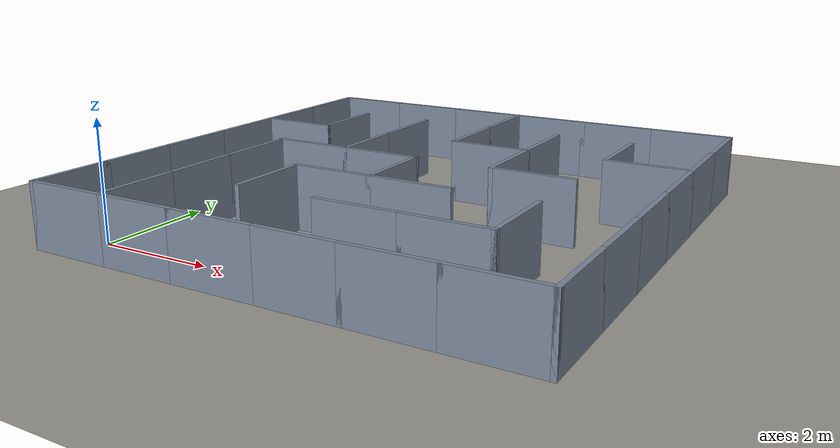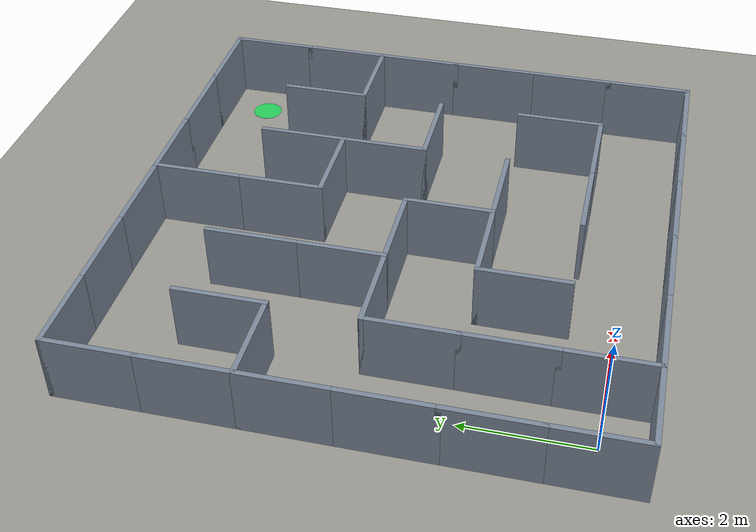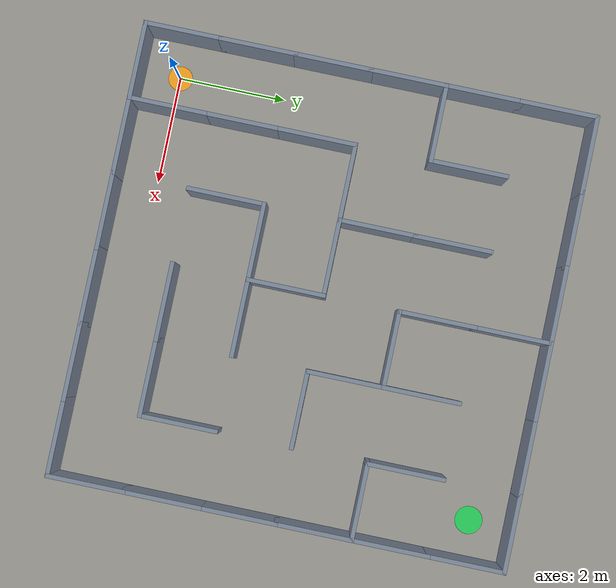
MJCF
<mujoco model="bhl-random-maze-9002">
      <compiler angle="radian"/><option timestep=".0005"/>
      <visual>
        <global offwidth="1280" offheight="720"/>
        <headlight diffuse="0.40 0.40 0.40" ambient="0.30 0.30 0.32" specular="0 0 0"/>
        <quality shadowsize="4096"/>
        <rgba haze="0.16 0.18 0.22 1"/>
      </visual>
      <asset>
        <texture type="skybox" builtin="gradient" rgb1="0.50 0.56 0.64" rgb2="0.10 0.12 0.16" width="512" height="3072"/>
        <texture type="2d" name="tile" builtin="checker" mark="edge" rgb1="0.66 0.65 0.62" rgb2="0.53 0.53 0.51"
                 markrgb="0.40 0.40 0.40" width="300" height="300"/>
        <material name="tile" texture="tile" texuniform="true" texrepeat="6 6" reflectance="0.0" specular="0.05" shininess="0.05"/>
        <texture type="2d" name="brick" builtin="checker" mark="edge" rgb1="0.52 0.57 0.64" rgb2="0.46 0.51 0.58"
                 markrgb="0.36 0.40 0.46" width="128" height="128"/>
        <material name="wall" texture="brick" texuniform="true" texrepeat="3 3" reflectance="0.0" specular="0.1" shininess="0.1"/>
      </asset>
      <worldbody>
      <light pos="3.5 3.5 7" dir="0 0 -1" castshadow="true" diffuse="0.55 0.55 0.55" specular="0.05 0.05 0.05"/>
      <light pos="0.5 6.5 5" dir="0.45 -0.55 -0.7" directional="true" castshadow="false" diffuse="0.30 0.30 0.32"/>
      <geom name="floor" type="plane" size="12 12 .05" material="tile"/>
    <geom name="wall_maze_0" type="box" pos="0.7 0.0 0.55" size="0.04 0.74 0.55" material="wall"/>
<geom name="wall_maze_1" type="box" pos="-0.7 0.0 0.55" size="0.04 0.74 0.55" material="wall"/>
<geom name="wall_maze_2" type="box" pos="0.0 -0.7 0.55" size="0.74 0.04 0.55" material="wall"/>
<geom name="wall_maze_3" type="box" pos="0.7 1.4 0.55" size="0.04 0.74 0.55" material="wall"/>
<geom name="wall_maze_4" type="box" pos="-0.7 1.4 0.55" size="0.04 0.74 0.55" material="wall"/>
<geom name="wall_maze_5" type="box" pos="0.7 2.8 0.55" size="0.04 0.74 0.55" material="wall"/>
<geom name="wall_maze_6" type="box" pos="-0.7 2.8 0.55" size="0.04 0.74 0.55" material="wall"/>
<geom name="wall_maze_7" type="box" pos="0.0 4.9 0.55" size="0.74 0.04 0.55" material="wall"/>
<geom name="wall_maze_8" type="box" pos="-0.7 4.2 0.55" size="0.04 0.74 0.55" material="wall"/>
<geom name="wall_maze_9" type="box" pos="0.7 5.6 0.55" size="0.04 0.74 0.55" material="wall"/>
<geom name="wall_maze_10" type="box" pos="-0.7 5.6 0.55" size="0.04 0.74 0.55" material="wall"/>
<geom name="wall_maze_11" type="box" pos="0.0 7.7 0.55" size="0.74 0.04 0.55" material="wall"/>
<geom name="wall_maze_12" type="box" pos="-0.7 7.0 0.55" size="0.04 0.74 0.55" material="wall"/>
<geom name="wall_maze_13" type="box" pos="1.4 -0.7 0.55" size="0.74 0.04 0.55" material="wall"/>
<geom name="wall_maze_14" type="box" pos="2.1 1.4 0.55" size="0.04 0.74 0.55" material="wall"/>
<geom name="wall_maze_15" type="box" pos="1.4 3.5 0.55" size="0.74 0.04 0.55" material="wall"/>
<geom name="wall_maze_16" type="box" pos="2.1 4.2 0.55" size="0.04 0.74 0.55" material="wall"/>
<geom name="wall_maze_17" type="box" pos="2.1 5.6 0.55" size="0.04 0.74 0.55" material="wall"/>
<geom name="wall_maze_18" type="box" pos="1.4 7.7 0.55" size="0.74 0.04 0.55" material="wall"/>
<geom name="wall_maze_19" type="box" pos="2.8 -0.7 0.55" size="0.74 0.04 0.55" material="wall"/>
<geom name="wall_maze_20" type="box" pos="2.8 2.1 0.55" size="0.74 0.04 0.55" material="wall"/>
<geom name="wall_maze_21" type="box" pos="3.5 2.8 0.55" size="0.04 0.74 0.55" material="wall"/>
<geom name="wall_maze_22" type="box" pos="2.8 3.5 0.55" size="0.74 0.04 0.55" material="wall"/>
<geom name="wall_maze_23" type="box" pos="3.5 5.6 0.55" size="0.04 0.74 0.55" material="wall"/>
<geom name="wall_maze_24" type="box" pos="3.5 7.0 0.55" size="0.04 0.74 0.55" material="wall"/>
<geom name="wall_maze_25" type="box" pos="2.8 7.7 0.55" size="0.74 0.04 0.55" material="wall"/>
<geom name="wall_maze_26" type="box" pos="4.2 0.7 0.55" size="0.74 0.04 0.55" material="wall"/>
<geom name="wall_maze_27" type="box" pos="4.2 -0.7 0.55" size="0.74 0.04 0.55" material="wall"/>
<geom name="wall_maze_28" type="box" pos="4.2 2.1 0.55" size="0.74 0.04 0.55" material="wall"/>
<geom name="wall_maze_29" type="box" pos="4.9 4.2 0.55" size="0.04 0.74 0.55" material="wall"/>
<geom name="wall_maze_30" type="box" pos="4.2 4.9 0.55" size="0.74 0.04 0.55" material="wall"/>
<geom name="wall_maze_31" type="box" pos="4.9 5.6 0.55" size="0.04 0.74 0.55" material="wall"/>
<geom name="wall_maze_32" type="box" pos="4.2 7.7 0.55" size="0.74 0.04 0.55" material="wall"/>
<geom name="wall_maze_33" type="box" pos="5.6 0.7 0.55" size="0.74 0.04 0.55" material="wall"/>
<geom name="wall_maze_34" type="box" pos="5.6 -0.7 0.55" size="0.74 0.04 0.55" material="wall"/>
<geom name="wall_maze_35" type="box" pos="6.3 1.4 0.55" size="0.04 0.74 0.55" material="wall"/>
<geom name="wall_maze_36" type="box" pos="5.6 3.5 0.55" size="0.74 0.04 0.55" material="wall"/>
<geom name="wall_maze_37" type="box" pos="6.3 5.6 0.55" size="0.04 0.74 0.55" material="wall"/>
<geom name="wall_maze_38" type="box" pos="5.6 7.7 0.55" size="0.74 0.04 0.55" material="wall"/>
<geom name="wall_maze_39" type="box" pos="7.7 0.0 0.55" size="0.04 0.74 0.55" material="wall"/>
<geom name="wall_maze_40" type="box" pos="7.0 -0.7 0.55" size="0.74 0.04 0.55" material="wall"/>
<geom name="wall_maze_41" type="box" pos="7.7 1.4 0.55" size="0.04 0.74 0.55" material="wall"/>
<geom name="wall_maze_42" type="box" pos="7.7 2.8 0.55" size="0.04 0.74 0.55" material="wall"/>
<geom name="wall_maze_43" type="box" pos="7.7 4.2 0.55" size="0.04 0.74 0.55" material="wall"/>
<geom name="wall_maze_44" type="box" pos="7.0 4.9 0.55" size="0.74 0.04 0.55" material="wall"/>
<geom name="wall_maze_45" type="box" pos="7.7 5.6 0.55" size="0.04 0.74 0.55" material="wall"/>
<geom name="wall_maze_46" type="box" pos="7.7 7.0 0.55" size="0.04 0.74 0.55" material="wall"/>
<geom name="wall_maze_47" type="box" pos="7.0 7.7 0.55" size="0.74 0.04 0.55" material="wall"/>
<geom name="start_marker" type="cylinder" pos="0.0 0.0 .002" size=".23 .001" rgba=".96 .63 .12 1" contype="0" conaffinity="0"/>
<geom name="goal_marker" type="cylinder" pos="7.0 7.0 .002" size=".26 .001" rgba=".15 .8 .35 1" contype="0" conaffinity="0"/></worldbody></mujoco>
